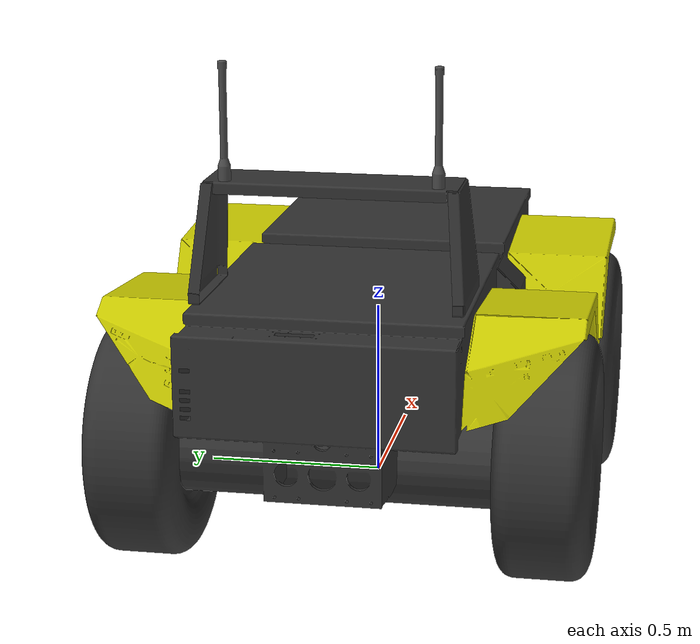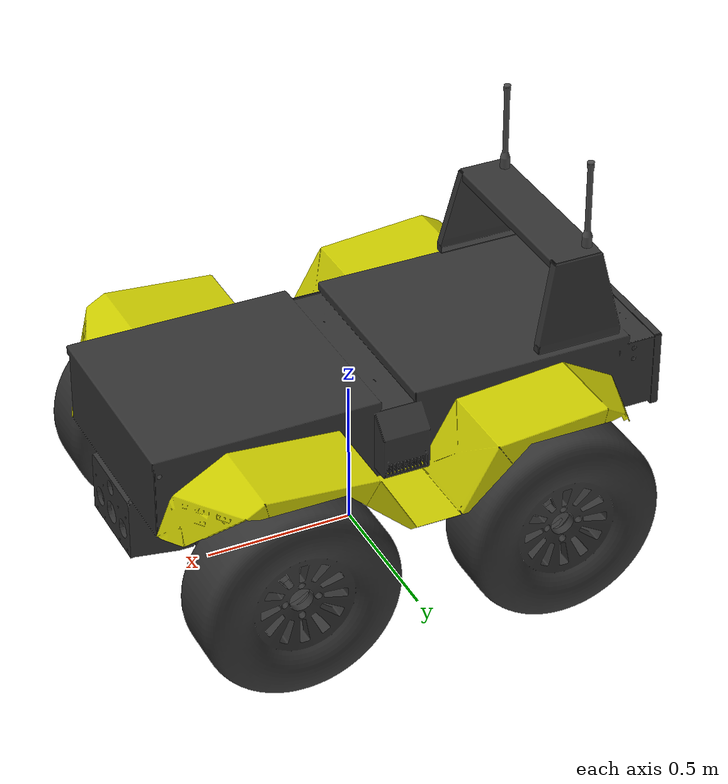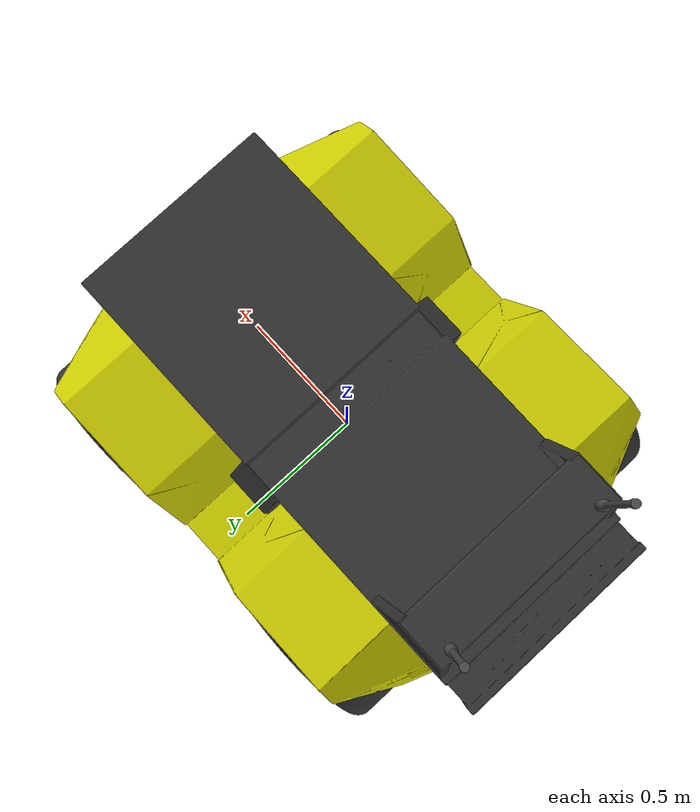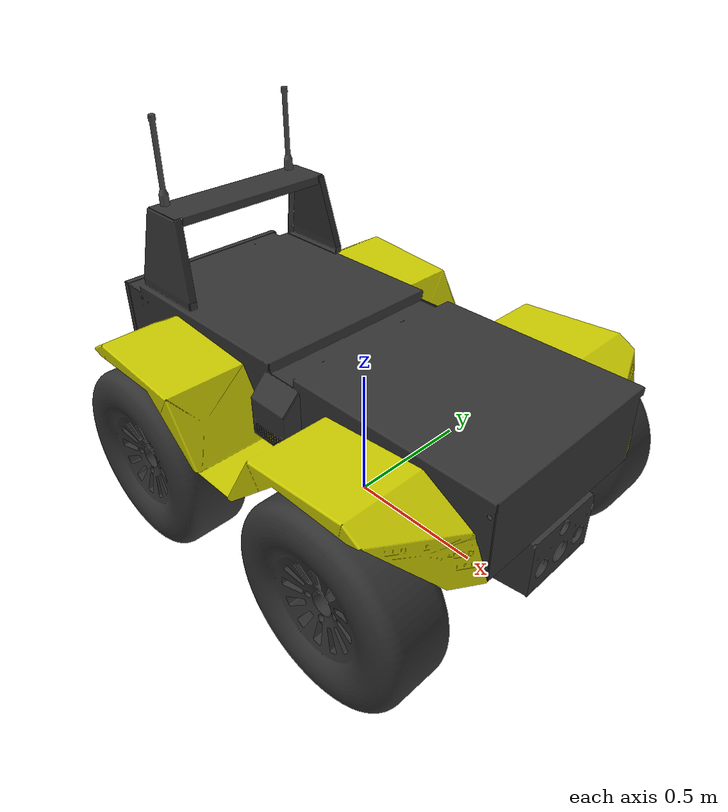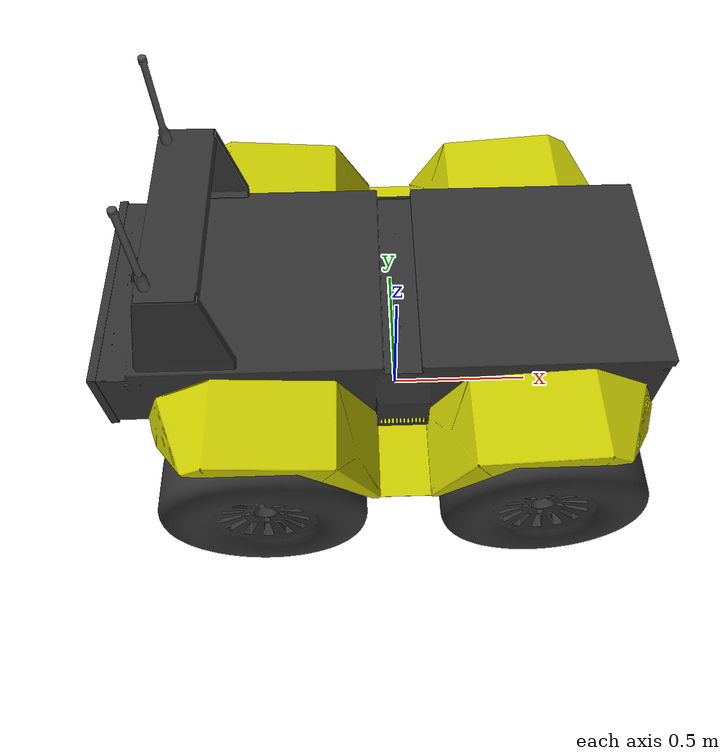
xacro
<?xml version="1.0"?>

<robot name="grizzly" xmlns:xacro="http://ros.org/wiki/xacro">
  <xacro:property name="ground_clearance" value="0.203" />

  <xacro:arg name="robot_namespace" default="/" />
  <xacro:arg name="urdf_extras" default="empty.urdf" />

  <!-- Included URDF/XACRO Files -->
  <xacro:include filename="$(find grizzly_description)/urdf/accessories.urdf.xacro" />

  <xacro:property name="M_PI" value="3.14159"/>

  <!-- Base Size -->
  <xacro:property name="base_x_size" value="1.75000000" />
  <xacro:property name="base_y_size" value="0.71100000" />
  <xacro:property name="base_z_size" value="0.4950000" />

  <!-- Key Dimensions -->
  <xacro:property name="chassis_mass" value="487" />
  <xacro:property name="front_axle_mass" value="113" />
  <xacro:property name="front_axle_radius" value="0.13" />
  <xacro:property name="front_axle_length" value="1.0" />
  <xacro:property name="wheelbase" value="0.896" />
  <xacro:property name="track" value="0.537" />

  <!-- Wheel Mounting Positions -->
  <xacro:property name="wheel_vertical_offset" value="0.03282" />

  <!-- Wheel Properties -->
  <xacro:property name="wheel_width" value="0.2667" />
  <xacro:property name="wheel_radius" value="0.3175" />
  <xacro:property name="wheel_mass" value="15" />

  <!-- Root link of Grizzly -->
  <link name="base_link" />

  <!-- Sensor Arch Options -->
  <xacro:arg name="front_sensor_arch_enabled" default="$(optenv GRIZZLY_FRONT_SENSOR_ARCH_ENABLED false)" />
  <xacro:arg name="front_tower_xyz" default="$(optenv GRIZZLY_FRONT_SENSOR_ARCH_XYZ 0.495 0.0 0.0)" />
  <xacro:arg name="front_tower_rpy" default="$(optenv GRIZZLY_FRONT_SENSOR_ARCH_RPY 0.0 0.0 0.0)" />
  <xacro:arg name="rear_sensor_arch_enabled" default="$(optenv GRIZZLY_REAR_SENSOR_ARCH_ENABLED true)" />
  <xacro:arg name="rear_tower_xyz" default="$(optenv GRIZZLY_REAR_SENSOR_ARCH_XYZ -0.63 0.0 0.0)" />
  <xacro:arg name="rear_tower_rpy" default="$(optenv GRIZZLY_REAR_SENSOR_ARCH_RPY 0.0 0.0 0.0)" />

  <!-- Base link is the center of the robot's bottom plate -->
  <link name="chassis_link">
    <inertial>
      <mass value="${chassis_mass}"/>
      <origin xyz="-0.013 -0.00061 -0.0205"/>
      <inertia ixx="64.010712692" ixy="0.214224647" ixz="-1.636784296"
               iyy="200.87" iyz="-0.048325439" izz="229.831441333" />
    </inertial>
    <visual>
      <origin xyz="0 0 ${ground_clearance}" rpy="${M_PI/2} 0 ${M_PI/2}" />
      <geometry>
        <mesh filename="package://grizzly_description/meshes/base_link.stl" />
      </geometry>
      <material name="DarkGrey" />
    </visual>
    <collision>
      <origin xyz="0 0 ${ground_clearance}" rpy="${M_PI/2} 0 ${M_PI/2}" />
      <geometry>
         <box size="${base_y_size} ${base_z_size} ${base_x_size}" />
      </geometry>
    </collision>
  </link>

  <link name="front_axle_link">
    <inertial>
      <mass value="${front_axle_mass}" />
      <origin xyz="0 0 0"/>
      <inertia ixx="9.9" ixy="0.0" ixz="0.0" iyy="9.9" iyz="0.0" izz="1.75" />
    </inertial>
    <visual>
      <origin xyz="0 0 0"
              rpy="0 0 0" />
      <geometry>
        <mesh filename="package://grizzly_description/meshes/front_axle.stl" />
      </geometry>
      <material name="DarkGrey" />
    </visual>
    <collision>
      <origin xyz="0 0 0"
              rpy="${M_PI/2} 0 0" />
      <geometry>
        <cylinder length="${front_axle_length}"
                  radius="${front_axle_radius}" />
      </geometry>
    </collision>
  </link>
  <joint name="front_axle_joint"
         type="fixed">
    <origin xyz="${wheelbase/2} 0 0"
            rpy="0 0 0" />
    <parent link="chassis_link" />
    <child link="front_axle_link" />
    <axis xyz="0 1 0"
          rpy="0 0 0" />
    <limit effort="10"
           lower="0"
           upper="0"
           velocity="0.5" />
  </joint>

  <joint name="chassis_joint"
         type="fixed">
    <origin xyz="0 0 ${ground_clearance}" rpy="0 0 0"/>
    <parent link="base_link" />
    <child link="chassis_link" />
  </joint>

  <!-- Add a sensor anchor link that points to the center of the robot top plate -->
  <link name="sensor_anchor_link"/>
  <joint name="sensor_anchor_joint" type="fixed">
    <origin xyz="0 0 ${base_z_size}"
            rpy="0 0 0" />
    <parent link="chassis_link" />
    <child link="sensor_anchor_link" />
  </joint>

  <!-- The position and orientation of the IMU in the rear compartment. -->
  <link name="imu_link" />
  <joint name="imu_joint" type="fixed">
    <origin xyz="-${base_x_size/2} 0 -${base_z_size/2}"
             rpy="${M_PI} ${M_PI/2} 0" />
    <parent link="sensor_anchor_link" />
    <child link="imu_link" />
  </joint>

  <xacro:macro name="grizzly_wheel" params="wheel_prefix parent *joint_pose flipY">
    <link name="${wheel_prefix}_wheel_link">
      <inertial>
        <mass value="${wheel_mass}" />
        <origin xyz="-0.002 -0.198 0.003" />
        <inertia  ixx="14.68" ixy="-0.033" ixz="0.07" iyy="26.7" iyz="-0.05" izz="14.68" />
      </inertial>
      <visual>
        <origin xyz="0 0 0" rpy="${M_PI/2} ${flipY*M_PI} ${M_PI/2}" />
        <geometry>
          <mesh filename="package://grizzly_description/meshes/wheel.stl" />
        </geometry>
        <material name="DarkGrey" />
      </visual>
      <collision>
        <origin xyz="0 0 0" rpy="${M_PI/2} ${flipY*M_PI} 0" />
        <geometry>
          <cylinder length="${wheel_width}" radius="${wheel_radius}" />
        </geometry>
      </collision>
    </link>

    <joint name="${wheel_prefix}_wheel" type="continuous">
      <parent link="${parent}"/>
      <child link="${wheel_prefix}_wheel_link"/>
      <xacro:insert_block name="joint_pose"/>
      <axis xyz="0 1 0" rpy="0 0 0" />
      <joint_properties damping="0.0" friction="0.0" />
    </joint>

    <transmission name="${wheel_prefix}_wheel_trans" type="SimpleTransmission">
      <type>transmission_interface/SimpleTransmission</type>
      <actuator name="${wheel_prefix}_wheel_motor">
        <mechanicalReduction>1</mechanicalReduction>
      </actuator>
      <joint name="${wheel_prefix}_wheel">
        <hardwareInterface>hardware_interface/VelocityJointInterface</hardwareInterface>
      </joint>
    </transmission>
  </xacro:macro>

  <!-- Grizzly wheel macros -->
  <xacro:grizzly_wheel wheel_prefix="front_left" parent="front_axle_link" flipY="0">
    <origin xyz="0 ${track} ${wheel_vertical_offset}" rpy="0 0 0" />
  </xacro:grizzly_wheel>
  <xacro:grizzly_wheel wheel_prefix="front_right" parent="front_axle_link" flipY="1">
    <origin xyz="0 ${-track} ${wheel_vertical_offset}" rpy="0 0 0" />
  </xacro:grizzly_wheel>
  <xacro:grizzly_wheel wheel_prefix="rear_left" parent="chassis_link" flipY="0">
    <origin xyz="${-wheelbase/2} ${track} ${wheel_vertical_offset}" rpy="0 0 0" />
  </xacro:grizzly_wheel>
  <xacro:grizzly_wheel wheel_prefix="rear_right" parent="chassis_link" flipY="1">
    <origin xyz="${-wheelbase/2} ${-track} ${wheel_vertical_offset}" rpy="0 0 0" />
  </xacro:grizzly_wheel>

  <!-- Front Sensor Arch -->
  <xacro:if value="$(arg front_sensor_arch_enabled)">
    <link name="front_sensor_base_link">
      <visual>
        <origin xyz="0 0 0" rpy="0 0 0" />
        <geometry>
          <mesh filename="package://grizzly_description/meshes/sensor_risers.stl" />
        </geometry>
        <material name="DarkGrey" />
      </visual>
      <collision>
        <geometry>
          <mesh filename="package://grizzly_description/meshes/sensor_risers.stl" />
        </geometry>
      </collision>
    </link>
    <joint name="front_sensor_base_joint" type="fixed">
      <origin xyz="$(arg front_tower_xyz)" rpy="$(arg rear_tower_rpy)" />
      <parent link="sensor_anchor_link" />
      <child link="front_sensor_base_link" />
    </joint>

    <link name="front_sensor_arch_link">
      <visual>
        <origin xyz="0 0 0" rpy="0 0 0" />
        <geometry>
          <mesh filename="package://grizzly_description/meshes/sensor_arch.stl" />
        </geometry>
        <material name="DarkGrey" />
      </visual>
      <collision>
        <geometry>
          <mesh filename="package://grizzly_description/meshes/sensor_arch.stl" />
        </geometry>
      </collision>
    </link>
    <joint name="front_sensor_arch_joint" type="fixed">
      <origin xyz="0 0 0.3" rpy="0 0 0" />
      <parent link="front_sensor_base_link" />
      <child link="front_sensor_arch_link" />
    </joint>

    <link name="front_sensor_mount_link"/>
    <joint name="front_sensor_mount_joint" type="fixed">
      <origin xyz="0 0 0.15" rpy="0 0 0" />
      <parent link="front_sensor_arch_link" />
      <child link="front_sensor_mount_link" />
    </joint>
  </xacro:if>

  <link name="navsat_link" />

  <!-- Rear Sensor Arch -->
  <xacro:if value="$(arg rear_sensor_arch_enabled)">
    <link name="rear_sensor_base_link">
      <visual>
        <origin xyz="0 0 0" rpy="0 0 0" />
        <geometry>
          <mesh filename="package://grizzly_description/meshes/sensor_risers.stl" />
        </geometry>
        <material name="DarkGrey" />
      </visual>
      <collision>
        <geometry>
          <mesh filename="package://grizzly_description/meshes/sensor_risers.stl" />
        </geometry>
      </collision>
    </link>
    <joint name="rear_sensor_base_joint" type="fixed">
      <origin xyz="$(arg rear_tower_xyz)" rpy="$(arg rear_tower_rpy)" />
      <parent link="sensor_anchor_link" />
      <child link="rear_sensor_base_link" />
    </joint>

    <link name="rear_sensor_plate_link">
      <visual>
        <origin xyz="0 0 0" rpy="0 0 0" />
        <geometry>
          <mesh filename="package://grizzly_description/meshes/sensor_plate.stl" />
        </geometry>
        <material name="DarkGrey" />
      </visual>
      <collision>
        <geometry>
          <mesh filename="package://grizzly_description/meshes/sensor_plate.stl" />
        </geometry>
      </collision>
    </link>
    <joint name="rear_sensor_plate_joint" type="fixed">
      <origin xyz="0 0 0.3" rpy="0 0 0" />
      <parent link="rear_sensor_base_link" />
      <child link="rear_sensor_plate_link" />
    </joint>

    <link name="rear_antenna_link">
      <visual>
        <origin xyz="0 0 0" rpy="0 0 0" />
        <geometry>
          <mesh filename="package://grizzly_description/meshes/antennas.stl" />
        </geometry>
        <material name="Grey" />
      </visual>
      <collision>
        <geometry>
          <mesh filename="package://grizzly_description/meshes/antennas.stl" />
        </geometry>
      </collision>
    </link>
    <joint name="rear_antenna_joint" type="fixed">
      <origin xyz="0 0 0.003175" rpy="0 0 0" />
      <parent link="rear_sensor_plate_link" />
      <child link="rear_antenna_link" />
    </joint>

    <!-- This is the approximate position of the GPS antenna on the standard configuration. -->
    <joint name="navsat_joint" type="fixed">
      <origin xyz="0 0 0.4" rpy="0 0 0" />
      <parent link="rear_sensor_plate_link" />
      <child link="navsat_link" />
    </joint>
  </xacro:if>

  <xacro:unless value="$(arg rear_sensor_arch_enabled)">
    <joint name="navsat_joint" type="fixed">
      <origin xyz="-${base_x_size/2} 0 0"
              rpy="0 0 0" />
      <parent link="sensor_anchor_link" />
      <child link="navsat_link" />
    </joint>
  </xacro:unless>

  <xacro:grizzly_decorate />

  <!-- Bring in simulation data for Gazebo. -->
  <xacro:include filename="$(find grizzly_description)/urdf/grizzly.gazebo" />

  <!-- Optional custom includes. -->
  <xacro:include filename="$(arg urdf_extras)" />
</robot>

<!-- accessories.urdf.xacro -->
<robot name="grizzly_accessories" xmlns:xacro="http://ros.org/wiki/xacro">

  <xacro:include filename="$(find velodyne_description)/urdf/HDL-32E.urdf.xacro"/>
  <xacro:include filename="$(find flir_ptu_description)/urdf/d46.urdf.xacro" />
  <xacro:include filename="$(find pointgrey_camera_description)/urdf/pointgrey_bumblebee2.urdf.xacro" />
  <xacro:include filename="$(find lms1xx)/urdf/sick_lms1xx.urdf.xacro" />

  <xacro:arg name="ptu_enabled" default="$(optenv GRIZZLY_PTU_ENABLED false)" />
  <xacro:arg name="ptu_parent_link" default="$(optenv GRIZZLY_PTU_PARENT_LINK front_sensor_mount_link)" />
  <xacro:arg name="ptu_xyz" default="$(optenv GRIZZLY_PTU_XYZ 0.0 0.0 0.0)" />
  <xacro:arg name="ptu_rpy" default="$(optenv GRIZZLY_PTU_RPY 3.14159 0 0)" />

  <xacro:arg name="hdl32_enabled" default="$(optenv GRIZZLY_HDL32_ENABLED false)" />
  <xacro:arg name="hdl32_parent_link" default="$(optenv GRIZZLY_HDL32_PARENT_LINK front_sensor_mount_link)" />
  <xacro:arg name="hdl32_xyz" default="$(optenv GRIZZLY_HDL32_XYZ 0 0 0.003175)" />
  <xacro:arg name="hdl32_rpy" default="$(optenv GRIZZLY_HDL32_RPY 0.0 0.0 -1.5708)" />

  <xacro:arg name="bb2_enabled" default="$(optenv GRIZZLY_BB2_ENABLED false)" />
  <xacro:arg name="bb2_parent_link" default="$(optenv GRIZZLY_BB2_PARENT_LINK ptu_mount_link)" />
  <xacro:arg name="bb2_xyz" default="$(optenv GRIZZLY_BB2_XYZ 0.0 0.0 0.0)" />
  <xacro:arg name="bb2_rpy" default="$(optenv GRIZZLY_BB2_RPY 0.0 0.0 0.0)" />

  <xacro:arg name="lms_enabled" default="$(optenv GRIZZLY_LMS_ENABLED false)" />
  <xacro:arg name="lms_parent_link" default="$(optenv GRIZZLY_LMS_PARENT_LINK sensor_anchor_link)" />
  <xacro:arg name="lms_xyz" default="$(optenv GRIZZLY_LMS_XYZ 0.78 0.0 0.08)" />
  <xacro:arg name="lms_rpy" default="$(optenv GRIZZLY_LMS_RPY 0.0 0.0 0.0)" />
  <xacro:arg name="lms_mount_angle" default="$(optenv GRIZZLY_LMS_ANGLE 0.523599)" />

  <xacro:macro name="grizzly_decorate">

    <!-- Purely decorative visual component. -->
    <link name="fenders_link">
      <visual>
        <origin xyz="0 0 ${ground_clearance}" rpy="${M_PI/2} 0 ${M_PI/2}"/>
        <geometry>
          <mesh filename="package://grizzly_description/meshes/bumper.stl" />
        </geometry>
        <material name="Yellow" />
      </visual>
    </link>

    <joint name="fenders_joint" type="fixed">
      <parent link="chassis_link" />
      <child link="fenders_link" />
    </joint>

    <xacro:if value="$(arg hdl32_enabled)">
      <HDL-32E parent="$(arg hdl32_parent_link)" hz="10" samples="220">
        <origin xyz="$(arg hdl32_xyz)" rpy="$(arg hdl32_rpy)" />
      </HDL-32E>
    </xacro:if>

    <xacro:if value="$(arg ptu_enabled)">
      <joint name="ptu_mount_joint" type="fixed">
        <parent link="$(arg ptu_parent_link)"/>
        <child link="ptu_base_link"/>
        <origin xyz="$(arg ptu_xyz)" rpy="$(arg ptu_rpy)" />
      </joint>
      <ptu_d46 name="ptu"/>
    </xacro:if>

    <xacro:if value="$(arg bb2_enabled)">
      <joint name="bumblebee2_joint" type="fixed">
        <origin xyz="$(arg bb2_xyz)" rpy="$(arg bb2_rpy)" />
        <parent link="$(arg bb2_parent_link)" />
        <child link="bumblebee2" />
      </joint>
      <BB2-08S2C-38 frame="bumblebee2" name="bumblebee2" />
    </xacro:if>

    <xacro:if value="$(arg lms_enabled)">
      <joint name="lms_mount_joint" type="fixed">
        <origin xyz="$(arg lms_xyz)" rpy="$(arg lms_rpy)" />
        <parent link="$(arg lms_parent_link)" />
        <child link="lms_mount_link" />
      </joint>
      <link name="lms_mount_link" />

      <joint name="lms_joint" type="fixed">
        <origin xyz="-0.005 0 -0.0367" rpy="3.14159 $(arg lms_mount_angle) 0.0" />
        <parent link="lms_mount_link" />
        <child link="laser" />
      </joint>

      <sick_lms1xx/>
    </xacro:if>

  </xacro:macro>

  <material name="Black">
    <color rgba="0.0 0.0 0.0 1.0" />
  </material>
  <material name="Blue">
    <color rgba="0.0 0.0 0.8 1.0" />
  </material>
  <material name="Green">
    <color rgba="0.0 0.8 0.0 1.0" />
  </material>
  <material name="Grey">
    <color rgba="0.3 0.3 0.3 1.0" />
  </material>
  <material name="DarkGrey">
    <color rgba="0.2 0.2 0.2 1.0" />
  </material>
  <material name="Red">
    <color rgba="0.8 0.0 0.0 1.0" />
  </material>
  <material name="White">
    <color rgba="1.0 1.0 1.0 1.0" />
  </material>
  <material name="Yellow">
    <color rgba="0.8 0.8 0.0 1.0" />
  </material>

</robot>
